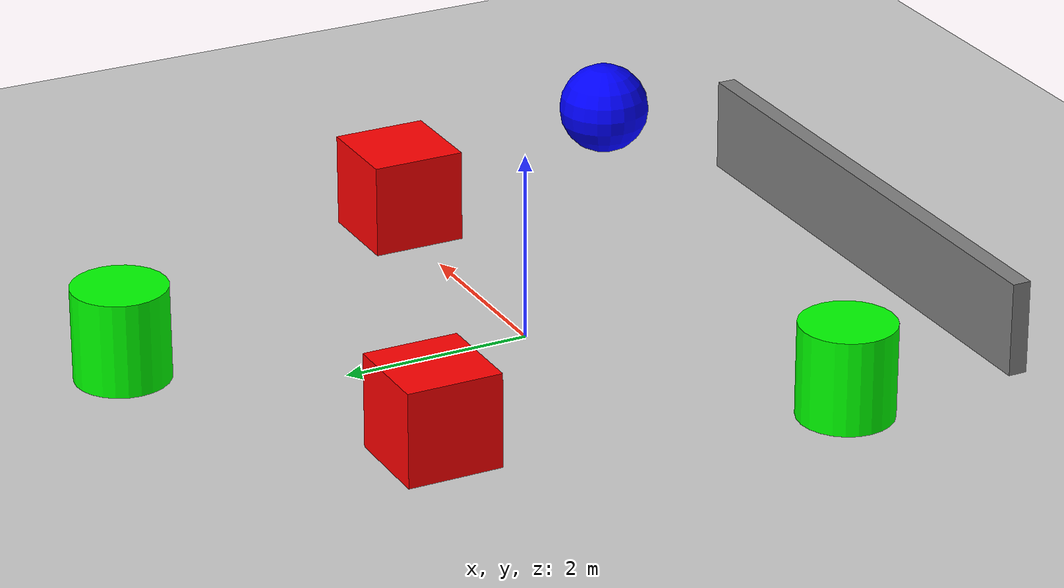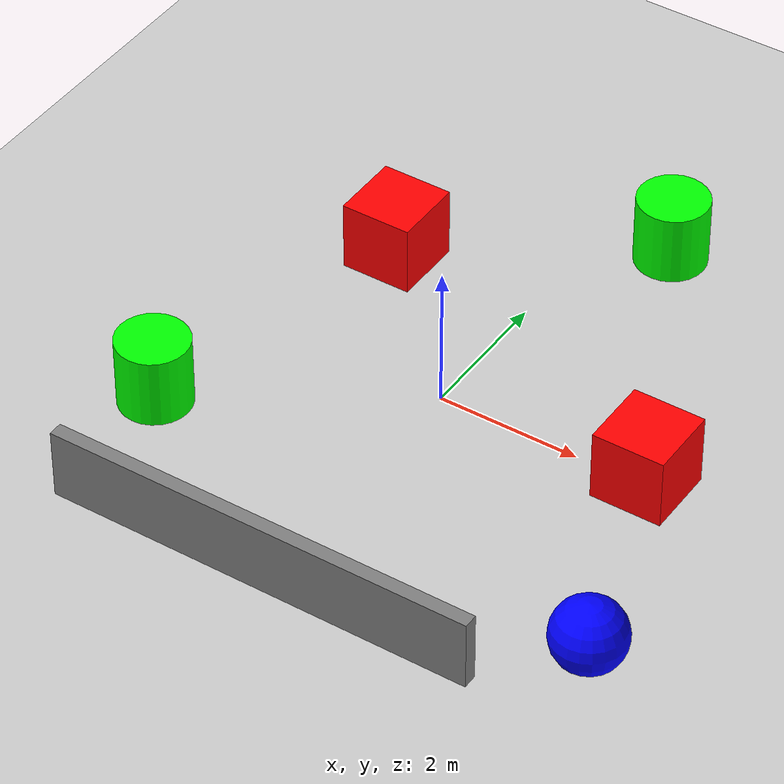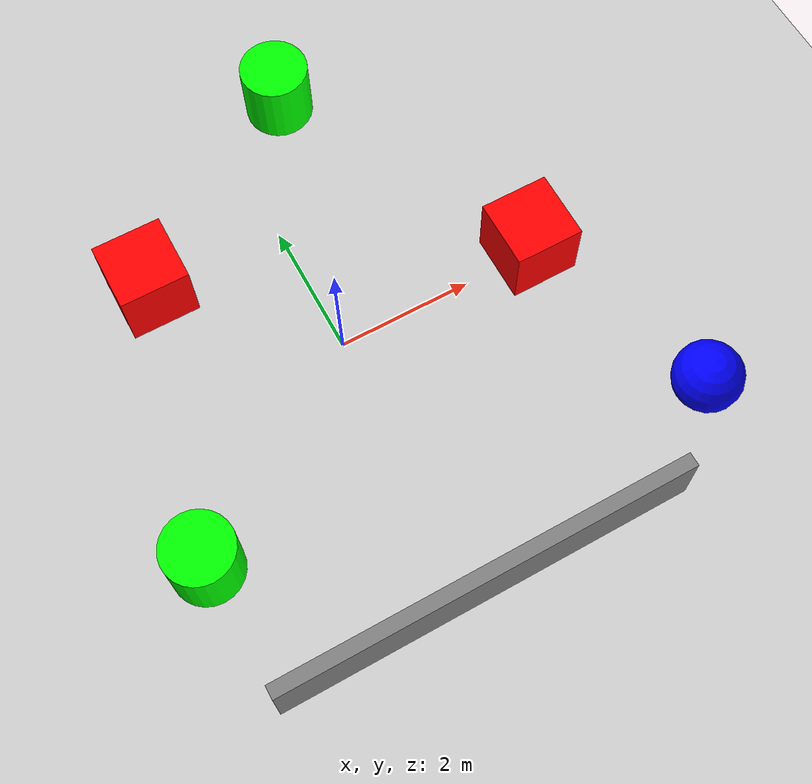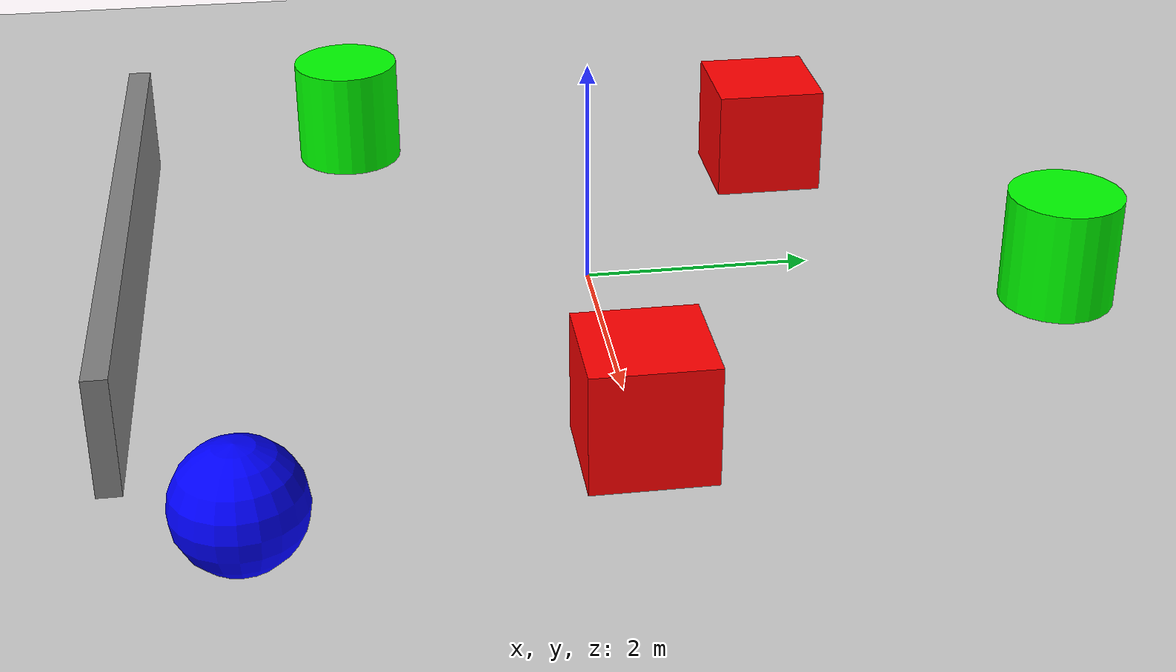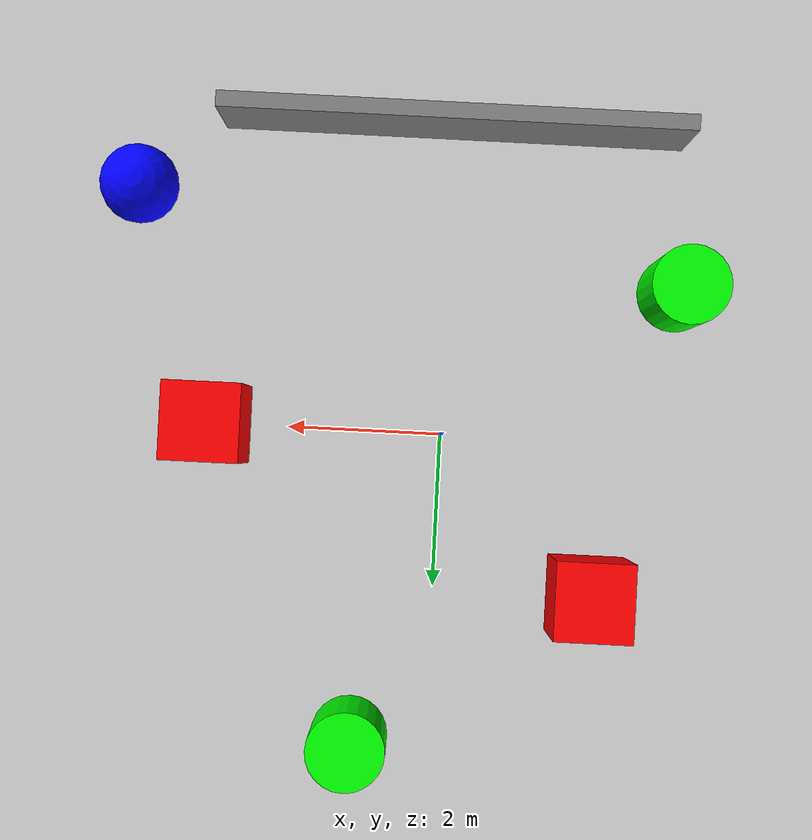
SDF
<?xml version="1.0" ?>
<sdf version="1.5">
  <world name="obstacle_world">
    <!-- Add the ground plane -->
    <include>
      <uri>model://ground_plane</uri>
    </include>

    <!-- Add lighting -->
    <include>
      <uri>model://sun</uri>
    </include>

    <!-- Box obstacle 1 -->
    <model name="box1">
      <pose>3 0 0.5 0 0 0</pose>
      <static>true</static>
      <link name="link">
        <collision name="collision">
          <geometry>
            <box>
              <size>1 1 1</size>
            </box>
          </geometry>
        </collision>
        <visual name="visual">
          <geometry>
            <box>
              <size>1 1 1</size>
            </box>
          </geometry>
          <material>
            <ambient>1 0 0 1</ambient>
            <diffuse>1 0 0 1</diffuse>
          </material>
        </visual>
      </link>
    </model>

    <!-- Box obstacle 2 -->
    <model name="box2">
      <pose>-2 2 0.5 0 0 0</pose>
      <static>true</static>
      <link name="link">
        <collision name="collision">
          <geometry>
            <box>
              <size>1 1 1</size>
            </box>
          </geometry>
        </collision>
        <visual name="visual">
          <geometry>
            <box>
              <size>1 1 1</size>
            </box>
          </geometry>
          <material>
            <ambient>1 0 0 1</ambient>
            <diffuse>1 0 0 1</diffuse>
          </material>
        </visual>
      </link>
    </model>

    <!-- Cylinder obstacle 1 -->
    <model name="cylinder1">
      <pose>1 4 0.5 0 0 0</pose>
      <static>true</static>
      <link name="link">
        <collision name="collision">
          <geometry>
            <cylinder>
              <radius>0.5</radius>
              <length>1</length>
            </cylinder>
          </geometry>
        </collision>
        <visual name="visual">
          <geometry>
            <cylinder>
              <radius>0.5</radius>
              <length>1</length>
            </cylinder>
          </geometry>
          <material>
            <ambient>0 1 0 1</ambient>
            <diffuse>0 1 0 1</diffuse>
          </material>
        </visual>
      </link>
    </model>

    <!-- Cylinder obstacle 2 -->
    <model name="cylinder2">
      <pose>-3 -2 0.5 0 0 0</pose>
      <static>true</static>
      <link name="link">
        <collision name="collision">
          <geometry>
            <cylinder>
              <radius>0.5</radius>
              <length>1</length>
            </cylinder>
          </geometry>
        </collision>
        <visual name="visual">
          <geometry>
            <cylinder>
              <radius>0.5</radius>
              <length>1</length>
            </cylinder>
          </geometry>
          <material>
            <ambient>0 1 0 1</ambient>
            <diffuse>0 1 0 1</diffuse>
          </material>
        </visual>
      </link>
    </model>

    <!-- Sphere obstacle -->
    <model name="sphere1">
      <pose>4 -3 0.5 0 0 0</pose>
      <static>true</static>
      <link name="link">
        <collision name="collision">
          <geometry>
            <sphere>
              <radius>0.5</radius>
            </sphere>
          </geometry>
        </collision>
        <visual name="visual">
          <geometry>
            <sphere>
              <radius>0.5</radius>
            </sphere>
          </geometry>
          <material>
            <ambient>0 0 1 1</ambient>
            <diffuse>0 0 1 1</diffuse>
          </material>
        </visual>
      </link>
    </model>

    <!-- Wall obstacle -->
    <model name="wall1">
      <pose>0 -4 0.5 0 0 0</pose>
      <static>true</static>
      <link name="link">
        <collision name="collision">
          <geometry>
            <box>
              <size>6 0.2 1</size>
            </box>
          </geometry>
        </collision>
        <visual name="visual">
          <geometry>
            <box>
              <size>6 0.2 1</size>
            </box>
          </geometry>
          <material>
            <ambient>0.5 0.5 0.5 1</ambient>
            <diffuse>0.5 0.5 0.5 1</diffuse>
          </material>
        </visual>
      </link>
    </model>
  </world>
</sdf>
